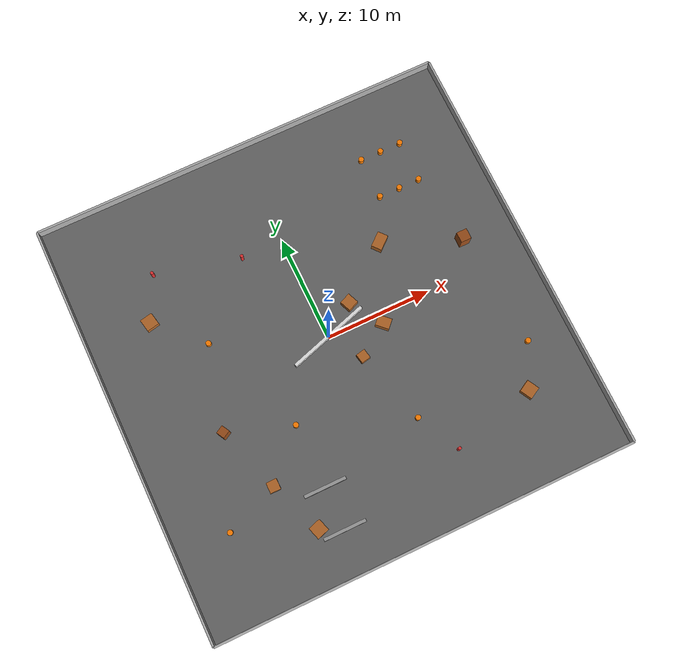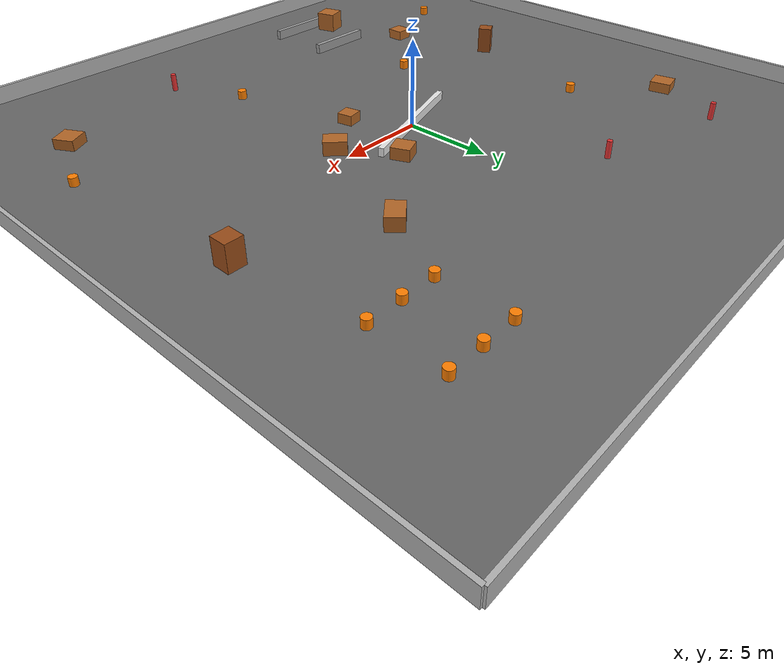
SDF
<sdf version="1.7">
  <world name="test_arena">
    <physics name="10ms" type="ode">
      <max_step_size>0.01</max_step_size>
      <real_time_factor>1.0</real_time_factor>
    </physics>

    <plugin
      filename="gz-sim-physics-system"
      name="gz::sim::systems::Physics">
    </plugin>

    <plugin
      filename="gz-sim-user-commands-system"
      name="gz::sim::systems::UserCommands">
    </plugin>

    <plugin
      filename="gz-sim-scene-broadcaster-system"
      name="gz::sim::systems::SceneBroadcaster">
    </plugin>

    <plugin
      filename="gz-sim-sensors-system"
      name="gz::sim::systems::Sensors">
      <render_engine>ogre2</render_engine>
    </plugin>

    <plugin filename="gz-sim-imu-system"
      name="gz::sim::systems::Imu">
    </plugin>

    <scene>
      <ambient>1 1 1</ambient>
      <background>0.8 0.8 0.8</background>
      <grid>false</grid>
    </scene>

    <gui fullscreen="0">
      <window>
        <width>1000</width>
        <height>845</height>
        <style material_theme="Light" material_primary="DeepOrange" material_accent="LightBlue" toolbar_color_light="#f3f3f3" toolbar_text_color_light="#111111" toolbar_color_dark="#414141" toolbar_text_color_dark="#f3f3f3" plugin_toolbar_color_light="#bbdefb" plugin_toolbar_text_color_light="#111111" plugin_toolbar_color_dark="#607d8b" plugin_toolbar_text_color_dark="#eeeeee" />
        <menus>
          <drawer default="false">
          </drawer>
        </menus>
      </window>

      <plugin filename="MinimalScene" name="3D View">
        <gz-gui>
          <title>3D View</title>
          <property type="bool" key="showTitleBar">false</property>
          <property type="string" key="state">docked</property>
        </gz-gui>
        <engine>ogre2</engine>
        <scene>scene</scene>
        <ambient_light>0.4 0.4 0.4</ambient_light>
        <background_color>0.8 0.8 0.8</background_color>
        <camera_pose>30 -30 20 0 0.5 0.785</camera_pose>
      </plugin>

      <plugin filename="EntityContextMenuPlugin" name="Entity context menu">
        <gz-gui>
          <property key="state" type="string">floating</property>
          <property key="width" type="double">5</property>
          <property key="height" type="double">5</property>
          <property key="showTitleBar" type="bool">false</property>
        </gz-gui>
      </plugin>

      <plugin filename="GzSceneManager" name="Scene Manager">
        <gz-gui>
          <property key="resizable" type="bool">false</property>
          <property key="width" type="double">5</property>
          <property key="height" type="double">5</property>
          <property key="state" type="string">floating</property>
          <property key="showTitleBar" type="bool">false</property>
        </gz-gui>
      </plugin>

      <plugin filename="InteractiveViewControl" name="Interactive view control">
        <gz-gui>
          <property key="resizable" type="bool">false</property>
          <property key="width" type="double">5</property>
          <property key="height" type="double">5</property>
          <property key="state" type="string">floating</property>
          <property key="showTitleBar" type="bool">false</property>
        </gz-gui>
      </plugin>

      <plugin filename="CameraTracking" name="Camera Tracking">
        <gz-gui>
          <property key="resizable" type="bool">false</property>
          <property key="width" type="double">5</property>
          <property key="height" type="double">5</property>
          <property key="state" type="string">floating</property>
          <property key="showTitleBar" type="bool">false</property>
        </gz-gui>
      </plugin>

      <plugin filename="WorldControl" name="World control">
        <gz-gui>
          <title>World control</title>
          <property type="bool" key="showTitleBar">false</property>
          <property type="bool" key="resizable">false</property>
          <property type="double" key="height">72</property>
          <property type="double" key="z">1</property>
          <property type="string" key="state">floating</property>
          <anchors target="3D View">
            <line own="left" target="left" />
            <line own="bottom" target="bottom" />
          </anchors>
        </gz-gui>
        <play_pause>true</play_pause>
        <step>true</step>
        <start_paused>true</start_paused>
        <use_event>true</use_event>
      </plugin>

      <plugin filename="WorldStats" name="World stats">
        <gz-gui>
          <title>World stats</title>
          <property type="bool" key="showTitleBar">false</property>
          <property type="bool" key="resizable">false</property>
          <property type="double" key="height">110</property>
          <property type="double" key="width">290</property>
          <property type="double" key="z">1</property>
          <property type="string" key="state">floating</property>
          <anchors target="3D View">
            <line own="right" target="right" />
            <line own="bottom" target="bottom" />
          </anchors>
        </gz-gui>
        <sim_time>true</sim_time>
        <real_time>true</real_time>
        <real_time_factor>true</real_time_factor>
        <iterations>true</iterations>
      </plugin>

      <plugin filename="ComponentInspector" name="Component inspector">
        <gz-gui>
          <property type="bool" key="showTitleBar">false</property>
          <property type="string" key="state">docked</property>
        </gz-gui>
      </plugin>

      <plugin filename="EntityTree" name="Entity tree">
        <gz-gui>
          <property type="bool" key="showTitleBar">false</property>
          <property type="string" key="state">docked</property>
        </gz-gui>
      </plugin>
    </gui>

    <light type="directional" name="sun">
      <cast_shadows>true</cast_shadows>
      <pose>0 0 10 0 0 0</pose>
      <diffuse>1 1 1 1</diffuse>
      <specular>0.2 0.2 0.2 1</specular>
      <attenuation>
        <range>1000</range>
        <constant>0.09</constant>
        <linear>0.001</linear>
        <quadratic>0.001</quadratic>
      </attenuation>
      <direction>-0.5 0.1 -0.9</direction>
    </light>

    <!-- Пол 40x40 -->
    <model name="arena_floor">
      <static>true</static>
      <pose>0 0 0 0 0 0</pose>
      <link name="floor_link">
        <collision name="floor_collision">
          <geometry>
            <plane>
              <normal>0 0 1</normal>
              <size>40 40</size>
            </plane>
          </geometry>
          <surface>
            <friction>
              <ode>
                <mu>100</mu>
                <mu2>50</mu2>
              </ode>
            </friction>
          </surface>
        </collision>
        <visual name="floor_visual">
          <geometry>
            <plane>
              <normal>0 0 1</normal>
              <size>40 40</size>
            </plane>
          </geometry>
          <material>
            <ambient>0.3 0.3 0.3 1</ambient>
            <diffuse>0.4 0.4 0.4 1</diffuse>
          </material>
        </visual>
      </link>
    </model>

    <!-- Стены -->
    <model name="wall_north">
      <static>true</static>
      <pose>0 20 0.5 0 0 0</pose>
      <link name="link">
        <collision name="collision">
          <geometry>
            <box>
              <size>40 0.2 1</size>
            </box>
          </geometry>
        </collision>
        <visual name="visual">
          <geometry>
            <box>
              <size>40 0.2 1</size>
            </box>
          </geometry>
          <material>
            <ambient>0.7 0.7 0.7 1</ambient>
            <diffuse>0.7 0.7 0.7 1</diffuse>
          </material>
        </visual>
      </link>
    </model>

    <model name="wall_south">
      <static>true</static>
      <pose>0 -20 0.5 0 0 0</pose>
      <link name="link">
        <collision name="collision">
          <geometry>
            <box>
              <size>40 0.2 1</size>
            </box>
          </geometry>
        </collision>
        <visual name="visual">
          <geometry>
            <box>
              <size>40 0.2 1</size>
            </box>
          </geometry>
          <material>
            <ambient>0.7 0.7 0.7 1</ambient>
            <diffuse>0.7 0.7 0.7 1</diffuse>
          </material>
        </visual>
      </link>
    </model>

    <model name="wall_west">
      <static>true</static>
      <pose>-20 0 0.5 0 0 0</pose>
      <link name="link">
        <collision name="collision">
          <geometry>
            <box>
              <size>0.2 40 1</size>
            </box>
          </geometry>
        </collision>
        <visual name="visual">
          <geometry>
            <box>
              <size>0.2 40 1</size>
            </box>
          </geometry>
          <material>
            <ambient>0.7 0.7 0.7 1</ambient>
            <diffuse>0.7 0.7 0.7 1</diffuse>
          </material>
        </visual>
      </link>
    </model>

    <model name="wall_east">
      <static>true</static>
      <pose>20 0 0.5 0 0 0</pose>
      <link name="link">
        <collision name="collision">
          <geometry>
            <box>
              <size>0.2 40 1</size>
            </box>
          </geometry>
        </collision>
        <visual name="visual">
          <geometry>
            <box>
              <size>0.2 40 1</size>
            </box>
          </geometry>
          <material>
            <ambient>0.7 0.7 0.7 1</ambient>
            <diffuse>0.7 0.7 0.7 1</diffuse>
          </material>
        </visual>
      </link>
    </model>

    <!-- Конусы - группа -->
    <model name="cone_1">
      <static>true</static>
      <pose>10 10 0.25 0 0 0</pose>
      <link name="link">
        <collision name="collision">
          <geometry>
            <cylinder>
              <radius>0.25</radius>
              <length>0.5</length>
            </cylinder>
          </geometry>
        </collision>
        <visual name="visual">
          <geometry>
            <cylinder>
              <radius>0.25</radius>
              <length>0.5</length>
            </cylinder>
          </geometry>
          <material>
            <ambient>1 0.5 0 1</ambient>
            <diffuse>1 0.5 0 1</diffuse>
          </material>
        </visual>
      </link>
    </model>

    <model name="cone_2">
      <static>true</static>
      <pose>10 14 0.25 0 0 0</pose>
      <link name="link">
        <collision name="collision">
          <geometry>
            <cylinder>
              <radius>0.25</radius>
              <length>0.5</length>
            </cylinder>
          </geometry>
        </collision>
        <visual name="visual">
          <geometry>
            <cylinder>
              <radius>0.25</radius>
              <length>0.5</length>
            </cylinder>
          </geometry>
          <material>
            <ambient>1 0.5 0 1</ambient>
            <diffuse>1 0.5 0 1</diffuse>
          </material>
        </visual>
      </link>
    </model>

    <model name="cone_3">
      <static>true</static>
      <pose>12 10 0.25 0 0 0</pose>
      <link name="link">
        <collision name="collision">
          <geometry>
            <cylinder>
              <radius>0.25</radius>
              <length>0.5</length>
            </cylinder>
          </geometry>
        </collision>
        <visual name="visual">
          <geometry>
            <cylinder>
              <radius>0.25</radius>
              <length>0.5</length>
            </cylinder>
          </geometry>
          <material>
            <ambient>1 0.5 0 1</ambient>
            <diffuse>1 0.5 0 1</diffuse>
          </material>
        </visual>
      </link>
    </model>

    <model name="cone_4">
      <static>true</static>
      <pose>12 14 0.25 0 0 0</pose>
      <link name="link">
        <collision name="collision">
          <geometry>
            <cylinder>
              <radius>0.25</radius>
              <length>0.5</length>
            </cylinder>
          </geometry>
        </collision>
        <visual name="visual">
          <geometry>
            <cylinder>
              <radius>0.25</radius>
              <length>0.5</length>
            </cylinder>
          </geometry>
          <material>
            <ambient>1 0.5 0 1</ambient>
            <diffuse>1 0.5 0 1</diffuse>
          </material>
        </visual>
      </link>
    </model>

    <model name="cone_5">
      <static>true</static>
      <pose>14 10 0.25 0 0 0</pose>
      <link name="link">
        <collision name="collision">
          <geometry>
            <cylinder>
              <radius>0.25</radius>
              <length>0.5</length>
            </cylinder>
          </geometry>
        </collision>
        <visual name="visual">
          <geometry>
            <cylinder>
              <radius>0.25</radius>
              <length>0.5</length>
            </cylinder>
          </geometry>
          <material>
            <ambient>1 0.5 0 1</ambient>
            <diffuse>1 0.5 0 1</diffuse>
          </material>
        </visual>
      </link>
    </model>

    <model name="cone_6">
      <static>true</static>
      <pose>14 14 0.25 0 0 0</pose>
      <link name="link">
        <collision name="collision">
          <geometry>
            <cylinder>
              <radius>0.25</radius>
              <length>0.5</length>
            </cylinder>
          </geometry>
        </collision>
        <visual name="visual">
          <geometry>
            <cylinder>
              <radius>0.25</radius>
              <length>0.5</length>
            </cylinder>
          </geometry>
          <material>
            <ambient>1 0.5 0 1</ambient>
            <diffuse>1 0.5 0 1</diffuse>
          </material>
        </visual>
      </link>
    </model>

    <!-- Конусы разрозненные -->
    <model name="cone_7">
      <static>true</static>
      <pose>-6 -6 0.25 0 0 0</pose>
      <link name="link">
        <collision name="collision">
          <geometry>
            <cylinder>
              <radius>0.25</radius>
              <length>0.5</length>
            </cylinder>
          </geometry>
        </collision>
        <visual name="visual">
          <geometry>
            <cylinder>
              <radius>0.25</radius>
              <length>0.5</length>
            </cylinder>
          </geometry>
          <material>
            <ambient>1 0.5 0 1</ambient>
            <diffuse>1 0.5 0 1</diffuse>
          </material>
        </visual>
      </link>
    </model>

    <model name="cone_8">
      <static>true</static>
      <pose>-10 4 0.25 0 0 0</pose>
      <link name="link">
        <collision name="collision">
          <geometry>
            <cylinder>
              <radius>0.25</radius>
              <length>0.5</length>
            </cylinder>
          </geometry>
        </collision>
        <visual name="visual">
          <geometry>
            <cylinder>
              <radius>0.25</radius>
              <length>0.5</length>
            </cylinder>
          </geometry>
          <material>
            <ambient>1 0.5 0 1</ambient>
            <diffuse>1 0.5 0 1</diffuse>
          </material>
        </visual>
      </link>
    </model>

    <model name="cone_9">
      <static>true</static>
      <pose>4 -10 0.25 0 0 0</pose>
      <link name="link">
        <collision name="collision">
          <geometry>
            <cylinder>
              <radius>0.25</radius>
              <length>0.5</length>
            </cylinder>
          </geometry>
        </collision>
        <visual name="visual">
          <geometry>
            <cylinder>
              <radius>0.25</radius>
              <length>0.5</length>
            </cylinder>
          </geometry>
          <material>
            <ambient>1 0.5 0 1</ambient>
            <diffuse>1 0.5 0 1</diffuse>
          </material>
        </visual>
      </link>
    </model>

    <model name="cone_10">
      <static>true</static>
      <pose>-15 -12 0.25 0 0 0</pose>
      <link name="link">
        <collision name="collision">
          <geometry>
            <cylinder>
              <radius>0.25</radius>
              <length>0.5</length>
            </cylinder>
          </geometry>
        </collision>
        <visual name="visual">
          <geometry>
            <cylinder>
              <radius>0.25</radius>
              <length>0.5</length>
            </cylinder>
          </geometry>
          <material>
            <ambient>1 0.5 0 1</ambient>
            <diffuse>1 0.5 0 1</diffuse>
          </material>
        </visual>
      </link>
    </model>

    <model name="cone_11">
      <static>true</static>
      <pose>16 -8 0.25 0 0 0</pose>
      <link name="link">
        <collision name="collision">
          <geometry>
            <cylinder>
              <radius>0.25</radius>
              <length>0.5</length>
            </cylinder>
          </geometry>
        </collision>
        <visual name="visual">
          <geometry>
            <cylinder>
              <radius>0.25</radius>
              <length>0.5</length>
            </cylinder>
          </geometry>
          <material>
            <ambient>1 0.5 0 1</ambient>
            <diffuse>1 0.5 0 1</diffuse>
          </material>
        </visual>
      </link>
    </model>

    <!-- Коробки -->
    <model name="box_1">
      <static>true</static>
      <pose>-10 -10 0.3 0 0 0</pose>
      <link name="link">
        <collision name="collision">
          <geometry>
            <box>
              <size>1.0 1.0 0.6</size>
            </box>
          </geometry>
        </collision>
        <visual name="visual">
          <geometry>
            <box>
              <size>1.0 1.0 0.6</size>
            </box>
          </geometry>
          <material>
            <ambient>0.6 0.3 0.1 1</ambient>
            <diffuse>0.7 0.4 0.15 1</diffuse>
          </material>
        </visual>
      </link>
    </model>

    <model name="box_2">
      <static>true</static>
      <pose>14 -12 0.3 0 0 0.5</pose>
      <link name="link">
        <collision name="collision">
          <geometry>
            <box>
              <size>1.2 1.2 0.6</size>
            </box>
          </geometry>
        </collision>
        <visual name="visual">
          <geometry>
            <box>
              <size>1.2 1.2 0.6</size>
            </box>
          </geometry>
          <material>
            <ambient>0.6 0.3 0.1 1</ambient>
            <diffuse>0.7 0.4 0.15 1</diffuse>
          </material>
        </visual>
      </link>
    </model>

    <model name="box_3">
      <static>true</static>
      <pose>-14 8 0.3 0 0 0.2</pose>
      <link name="link">
        <collision name="collision">
          <geometry>
            <box>
              <size>1.2 1.2 0.6</size>
            </box>
          </geometry>
        </collision>
        <visual name="visual">
          <geometry>
            <box>
              <size>1.2 1.2 0.6</size>
            </box>
          </geometry>
          <material>
            <ambient>0.6 0.3 0.1 1</ambient>
            <diffuse>0.7 0.4 0.15 1</diffuse>
          </material>
        </visual>
      </link>
    </model>

    <model name="box_4">
      <static>true</static>
      <pose>8 6 0.4 0 0 0.7</pose>
      <link name="link">
        <collision name="collision">
          <geometry>
            <box>
              <size>1.5 1.0 0.8</size>
            </box>
          </geometry>
        </collision>
        <visual name="visual">
          <geometry>
            <box>
              <size>1.5 1.0 0.8</size>
            </box>
          </geometry>
          <material>
            <ambient>0.6 0.3 0.1 1</ambient>
            <diffuse>0.7 0.4 0.15 1</diffuse>
          </material>
        </visual>
      </link>
    </model>

    <model name="box_5">
      <static>true</static>
      <pose>-8 -15 0.6 0 0 0.3</pose>
      <link name="link">
        <collision name="collision">
          <geometry>
            <box>
              <size>1.2 1.2 1.2</size>
            </box>
          </geometry>
        </collision>
        <visual name="visual">
          <geometry>
            <box>
              <size>1.2 1.2 1.2</size>
            </box>
          </geometry>
          <material>
            <ambient>0.6 0.3 0.1 1</ambient>
            <diffuse>0.7 0.4 0.15 1</diffuse>
          </material>
        </visual>
      </link>
    </model>

    <model name="box_6_tall">
      <static>true</static>
      <pose>15 3 0.75 0 0 0</pose>
      <link name="link">
        <collision name="collision">
          <geometry>
            <box>
              <size>1.0 1.0 1.5</size>
            </box>
          </geometry>
        </collision>
        <visual name="visual">
          <geometry>
            <box>
              <size>1.0 1.0 1.5</size>
            </box>
          </geometry>
          <material>
            <ambient>0.5 0.2 0.05 1</ambient>
            <diffuse>0.6 0.3 0.1 1</diffuse>
          </material>
        </visual>
      </link>
    </model>

    <model name="box_7_tall">
      <static>true</static>
      <pose>-12 -4 0.8 0 0 0.5</pose>
      <link name="link">
        <collision name="collision">
          <geometry>
            <box>
              <size>0.8 0.8 1.6</size>
            </box>
          </geometry>
        </collision>
        <visual name="visual">
          <geometry>
            <box>
              <size>0.8 0.8 1.6</size>
            </box>
          </geometry>
          <material>
            <ambient>0.5 0.2 0.05 1</ambient>
            <diffuse>0.6 0.3 0.1 1</diffuse>
          </material>
        </visual>
      </link>
    </model>

    <model name="box_8">
      <static>true</static>
      <pose>3 2 0.35 0 0 0.4</pose>
      <link name="link">
        <collision name="collision">
          <geometry>
            <box>
              <size>1.1 1.1 0.7</size>
            </box>
          </geometry>
        </collision>
        <visual name="visual">
          <geometry>
            <box>
              <size>1.1 1.1 0.7</size>
            </box>
          </geometry>
          <material>
            <ambient>0.6 0.3 0.1 1</ambient>
            <diffuse>0.7 0.4 0.15 1</diffuse>
          </material>
        </visual>
      </link>
    </model>

    <model name="box_9">
      <static>true</static>
      <pose>5 -1 0.4 0 0 0.8</pose>
      <link name="link">
        <collision name="collision">
          <geometry>
            <box>
              <size>1.0 1.3 0.8</size>
            </box>
          </geometry>
        </collision>
        <visual name="visual">
          <geometry>
            <box>
              <size>1.0 1.3 0.8</size>
            </box>
          </geometry>
          <material>
            <ambient>0.6 0.3 0.1 1</ambient>
            <diffuse>0.7 0.4 0.15 1</diffuse>
          </material>
        </visual>
      </link>
    </model>

    <model name="box_10">
      <static>true</static>
      <pose>2 -3 0.3 0 0 0.2</pose>
      <link name="link">
        <collision name="collision">
          <geometry>
            <box>
              <size>0.9 0.9 0.6</size>
            </box>
          </geometry>
        </collision>
        <visual name="visual">
          <geometry>
            <box>
              <size>0.9 0.9 0.6</size>
            </box>
          </geometry>
          <material>
            <ambient>0.6 0.3 0.1 1</ambient>
            <diffuse>0.7 0.4 0.15 1</diffuse>
          </material>
        </visual>
      </link>
    </model>

    <!-- Барьер -->
    <model name="barrier_1">
      <static>true</static>
      <pose>0 0 0.25 0 0 0.3</pose>
      <link name="link">
        <collision name="collision">
          <geometry>
            <box>
              <size>8.0 0.3 0.5</size>
            </box>
          </geometry>
        </collision>
        <visual name="visual">
          <geometry>
            <box>
              <size>8.0 0.3 0.5</size>
            </box>
          </geometry>
          <material>
            <ambient>0.8 0.8 0.8 1</ambient>
            <diffuse>0.9 0.9 0.9 1</diffuse>
          </material>
        </visual>
      </link>
    </model>

    <!-- Столбики -->
    <model name="pillar_1">
      <static>true</static>
      <pose>-4 10 0.5 0 0 0</pose>
      <link name="link">
        <collision name="collision">
          <geometry>
            <cylinder>
              <radius>0.15</radius>
              <length>1.0</length>
            </cylinder>
          </geometry>
        </collision>
        <visual name="visual">
          <geometry>
            <cylinder>
              <radius>0.15</radius>
              <length>1.0</length>
            </cylinder>
          </geometry>
          <material>
            <ambient>0.8 0.1 0.1 1</ambient>
            <diffuse>0.9 0.2 0.2 1</diffuse>
          </material>
        </visual>
      </link>
    </model>

    <model name="pillar_2">
      <static>true</static>
      <pose>6 -14 0.5 0 0 0</pose>
      <link name="link">
        <collision name="collision">
          <geometry>
            <cylinder>
              <radius>0.15</radius>
              <length>1.0</length>
            </cylinder>
          </geometry>
        </collision>
        <visual name="visual">
          <geometry>
            <cylinder>
              <radius>0.15</radius>
              <length>1.0</length>
            </cylinder>
          </geometry>
          <material>
            <ambient>0.8 0.1 0.1 1</ambient>
            <diffuse>0.9 0.2 0.2 1</diffuse>
          </material>
        </visual>
      </link>
    </model>

    <model name="pillar_3">
      <static>true</static>
      <pose>-12 12 0.5 0 0 0</pose>
      <link name="link">
        <collision name="collision">
          <geometry>
            <cylinder>
              <radius>0.15</radius>
              <length>1.0</length>
            </cylinder>
          </geometry>
        </collision>
        <visual name="visual">
          <geometry>
            <cylinder>
              <radius>0.15</radius>
              <length>1.0</length>
            </cylinder>
          </geometry>
          <material>
            <ambient>0.8 0.1 0.1 1</ambient>
            <diffuse>0.9 0.2 0.2 1</diffuse>
          </material>
        </visual>
      </link>
    </model>

    <!-- Узкий проход -->
    <model name="narrow_passage_left">
      <static>true</static>
      <pose>-6 -16 0.3 0 0 0</pose>
      <link name="link">
        <collision name="collision">
          <geometry>
            <box>
              <size>4.0 0.3 0.6</size>
            </box>
          </geometry>
        </collision>
        <visual name="visual">
          <geometry>
            <box>
              <size>4.0 0.3 0.6</size>
            </box>
          </geometry>
          <material>
            <ambient>0.5 0.5 0.5 1</ambient>
            <diffuse>0.6 0.6 0.6 1</diffuse>
          </material>
        </visual>
      </link>
    </model>

    <model name="narrow_passage_right">
      <static>true</static>
      <pose>-6 -12 0.3 0 0 0</pose>
      <link name="link">
        <collision name="collision">
          <geometry>
            <box>
              <size>4.0 0.3 0.6</size>
            </box>
          </geometry>
        </collision>
        <visual name="visual">
          <geometry>
            <box>
              <size>4.0 0.3 0.6</size>
            </box>
          </geometry>
          <material>
            <ambient>0.5 0.5 0.5 1</ambient>
            <diffuse>0.6 0.6 0.6 1</diffuse>
          </material>
        </visual>
      </link>
    </model>

    <rmf_charger_waypoints name="charger_waypoints">
      <rmf_vertex name="charger1" x="-16" y="-16" level="test_arena" />
      <rmf_vertex name="charger2" x="16" y="16" level="test_arena" />
    </rmf_charger_waypoints>

  </world>
</sdf>
